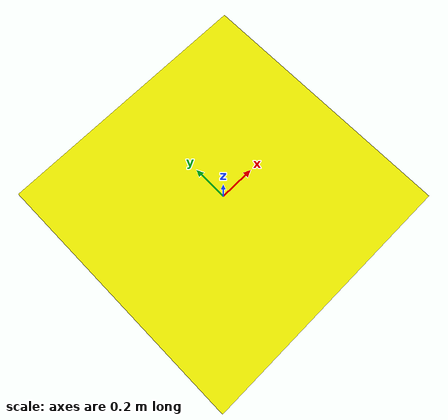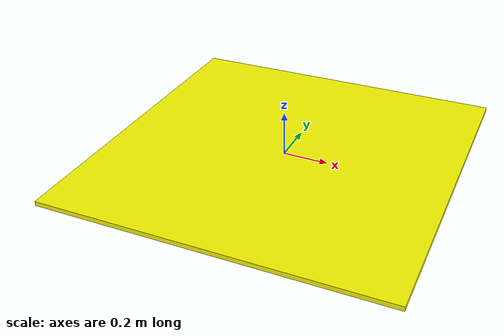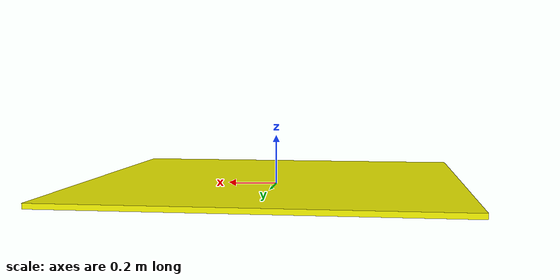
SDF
<?xml version="1.0"?>
<sdf version="1.7">
  <model name="yellow_goal">
    <static>true</static>
    <link name="link">
      <pose>0 0 0.01 0 0 0</pose>
      <collision name="collision">
        <geometry>
          <box>
            <size>1.5 1.5 0.02</size>
          </box>
        </geometry>
      </collision>
      <visual name="visual">
        <geometry>
          <box>
            <size>1.5 1.5 0.02</size>
          </box>
        </geometry>
        <material>
          <ambient>1 1 0 1</ambient>
          <diffuse>1 1 0 1</diffuse>
          <specular>0.1 0.1 0.1 1</specular>
        </material>
      </visual>
    </link>
  </model>
</sdf>
